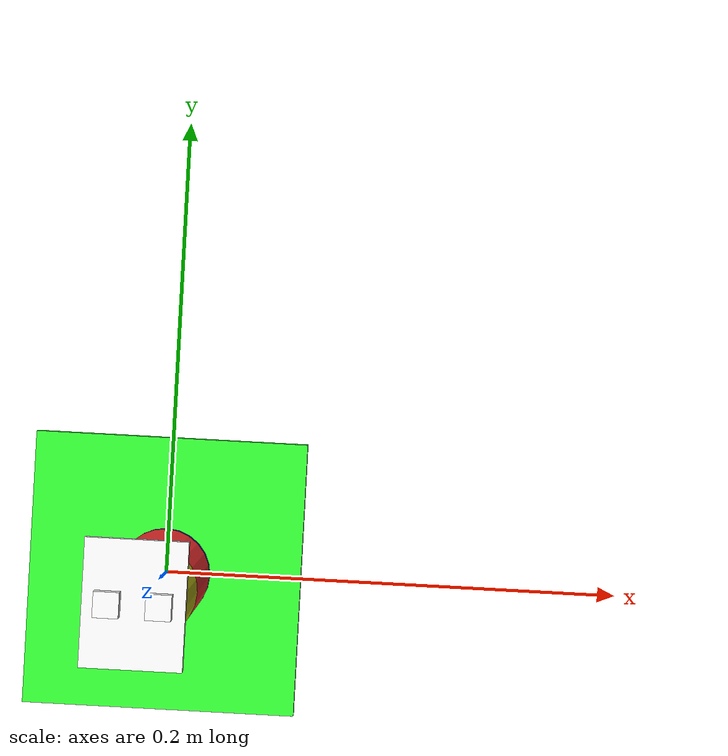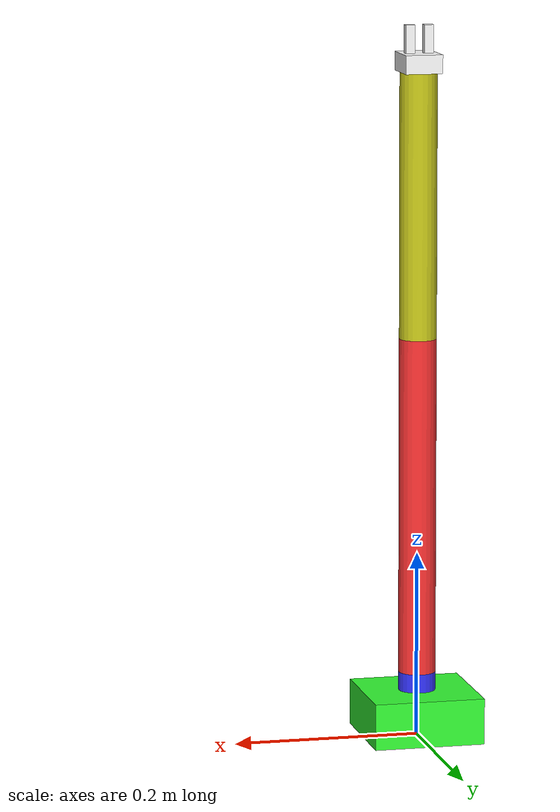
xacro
<?xml version="1.0"?>
<robot xmlns:xacro="http://www.ros.org/wiki/xacro" name="RobotArm">

	<xacro:include filename="Parameters.xacro"/>
	<xacro:include filename="Materials.xacro" />
	<xacro:include filename="Macros.xacro" />

	<link name="world"></link>

	<joint name="world-base_joint" type="fixed">
		<origin xyz="0 0 0" rpy="0 0 0"/>
		<parent link="world"/>
		<child link="base_link"/>
	</joint>

	<link name="base_link">

		<visual>
			<origin xyz="0 0 ${base_height/2}" rpy="0 0 0"/>
			<geometry>
				<box size="${base_length} ${base_width} ${base_height}"/>
			</geometry>
			<material name="green"/>
		</visual>

		<collision>
			<origin xyz="0 0 ${base_height/2}" rpy="0 0 0"/>
			<geometry>
				<box size="${base_length} ${base_width} ${base_height}"/>
			</geometry>
		</collision>
		<xacro:inertial_box mass="1.5" x="${base_length}" y="${base_width}" z="${base_height}">
			<origin xyz="0 0 ${base_height/2}" rpy="0 0 0"/>
		</xacro:inertial_box>
	</link>

	<joint name="base-rotator_joint" type="revolute">

		<origin xyz="0 0 ${base_height}" rpy="0 0 -${pi/2}"/>
		<parent link="base_link"/>
		<child link="rotator_link"/>
		<axis xyz="0 0 1"/>
		<limit lower="0" upper="${pi}" velocity="100" effort="100"/>
		<dynamics friction="0.98" damping="0"/>
	</joint>

	<link name="rotator_link">

		<visual>
			<origin xyz="0 0 ${rotator_length/2}"/>
			<geometry>
				<cylinder length="${rotator_length}" radius="${rotator_radius}"/>
			</geometry>
			<material name="blue"/>
		</visual>

		<collision>
			<origin xyz="0 0 ${rotator_length/2}"/>
			<geometry>
				<cylinder length="${rotator_length}" radius="${rotator_radius}"/>
			</geometry>
		</collision>

		<xacro:inertial_cylinder mass="0.15" length="${rotator_length}" radius="${rotator_radius}">
			<origin xyz="0 0 ${rotator_length/2}"/>
		</xacro:inertial_cylinder>

	</link>

	<joint name="rotator-arm1_joint" type="revolute">
		<origin xyz="0 0 ${rotator_length}" rpy="0 0 0"/>
		<parent link="rotator_link"/>
		<child link="arm1_link"/>
		<axis xyz="0 1 0"/>
		<limit lower="0" upper="${pi/2}" velocity="100" effort="100"/>
		<dynamics friction="0" damping="80"/>
	</joint>

	<link name="arm1_link">

		<visual>
			<origin xyz="0 0 ${arm1_length/2}" rpy="0 0 0"/>
			<geometry>
				<cylinder length="${arm1_length}" radius="${arm1_radius}"/>
			</geometry>
			<material name="red"/>
		</visual>

		<collision>
			<origin xyz="0 0 ${arm1_length/2}" rpy="0 0 0"/>
			<geometry>
				<cylinder length="${arm1_length}" radius="${arm1_radius}"/>
			</geometry>
		</collision>

		<xacro:inertial_cylinder mass="0.1" length="${arm1_length}" radius="${arm1_radius}">
			<origin xyz="0 0 ${arm1_length/2}" rpy="0 0 0"/>
		</xacro:inertial_cylinder>
	</link>

	<joint name="arm1-arm2_joint" type="revolute">
		<origin xyz="0 0 ${arm1_length}" rpy="0 0 0"/>
		<parent link="arm1_link"/>
		<child link="arm2_link"/>
		<axis xyz="0 1 0"/>
		<limit lower="0" upper="${pi}" velocity="100" effort="100"/>
		<dynamics friction="0.98" damping="0"/>
	</joint>

	<link name="arm2_link">

		<visual>
			<origin xyz="0 0 ${arm2_length/2}" rpy="0 0 0"/>
			<geometry>
				<cylinder length="${arm2_length}" radius="${arm2_radius}"/>
			</geometry>
			<material name="yellow"/>
		</visual>

		<collision>
			<origin xyz="0 0 ${arm2_length/2}" rpy="0 0 0"/>
			<geometry>
				<cylinder length="${arm2_length}" radius="${arm2_radius}"/>
			</geometry>
		</collision>

		<xacro:inertial_cylinder mass="0.1" length="${arm2_length}" radius="${arm2_radius}">
			<origin xyz="0 0 ${arm2_length/2}" rpy="0 0 0"/>
		</xacro:inertial_cylinder>
	</link>

	<joint name="arm2-gripperBase_joint" type="revolute">
		<origin xyz="0 0 ${arm2_length}" rpy="0 ${pi/2} 0"/>
		<parent link="arm2_link"/>
		<child link="gripperBase_link"/>
		<axis xyz="0 1 0"/>
		<limit lower="0" upper="${pi/2}" velocity="100" effort="100"/>
		<dynamics friction="0.98" damping="0"/>
	</joint>

	<link name="gripperBase_link">

		<visual>
			<origin xyz="-${gripperBase_length/2} 0 0" rpy="0 0 0"/>
			<geometry>
				<box size="${gripperBase_length} ${gripperBase_width} ${gripperBase_height}"/>
			</geometry>
			<material name="white"/>
		</visual>
		<collision>
			<origin xyz="0 0 0" rpy="0 0 0"/>
			<geometry>
				<box size="${gripperBase_length} ${gripperBase_width} ${gripperBase_height}"/>
			</geometry>
		</collision>

		<xacro:inertial_box mass="0.08" x="${gripperBase_length}" y="${gripperBase_width}" z="${gripperBase_height}">
			<origin xyz="0 0 0" rpy="0 0 0"/>
		</xacro:inertial_box>
	</link>

	<joint name="gripperBase-gripperClawLeft_joint" type="revolute">

		<origin xyz="-${gripperClaw_height} ${gripperBase_width/4} 0" rpy="0 ${pi/2} 0"/>
		<parent link="gripperBase_link"/>
		<child link="gripperClawLeft_link"/>
		<axis xyz="-1 0 0"/>
		<limit lower="-${pi/6}" upper="${pi/6}" velocity="100" effort="100"/>
		<dynamics friction="0.98" damping="0"/>
	</joint>

	<link name="gripperClawLeft_link">

		<visual>
			<origin xyz="0 0 ${gripperClaw_height/2}" rpy="0 0 0"/>
			<geometry>
				<box size="${gripperClaw_length} ${gripperClaw_width} ${gripperClaw_height}"/>
			</geometry>
			<material name="white"/>
		</visual>

		<collision>
			<origin xyz="0 0 -${gripperClaw_height/2}" rpy="0 0 0"/>
			<geometry>
				<box size="${gripperClaw_length} ${gripperClaw_width} ${gripperClaw_height}"/>
			</geometry>
		</collision>

		<xacro:inertial_box mass="0.005" x="${gripperClaw_length}" y="${gripperClaw_width}" z="${gripperClaw_height}">
			<origin xyz="0 0 ${gripperClaw_length/2}" rpy="0 0 0"/>
		</xacro:inertial_box>
	</link>

	<joint name="gripperBase-gripperClawRight_joint" type="revolute">

		<origin xyz="-${gripperClaw_height} -${gripperBase_width/4} 0" rpy="0 ${pi/2} 0"/>
		<parent link="gripperBase_link"/>
		<child link="gripperClawRight_link"/>
		<axis xyz="1 0 0"/>
		<limit lower="-${pi/6}" upper="${pi/6}" velocity="100" effort="100"/>
		<dynamics friction="0.98" damping="0"/>
	</joint>

	<link name="gripperClawRight_link">

		<visual>
			<origin xyz="0 0 ${gripperClaw_height/2}" rpy="0 0 0"/>
			<geometry>
				<box size="${gripperClaw_length} ${gripperClaw_width} ${gripperClaw_height}"/>
			</geometry>
			<material name="white"/>
		</visual>

		<collision>
			<origin xyz="0 0 -${gripperClaw_height/2}" rpy="0 0 0"/>
			<geometry>
				<box size="${gripperClaw_length} ${gripperClaw_width} ${gripperClaw_height}"/>
			</geometry>
		</collision>

		<xacro:inertial_box mass="0.005" x="${gripperClaw_length}" y="${gripperClaw_width}" z="${gripperClaw_height}">
			<origin xyz="0 0 ${gripperClaw_length/2}" rpy="0 0 0"/>
		</xacro:inertial_box>
	</link>

	<xacro:include filename="Gazebo_Plugins.xacro"/>
</robot>

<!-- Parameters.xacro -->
<robot xmlns:xacro="http://www.ros.org/wiki/xacro">

	<xacro:property name="base_length" value="0.12"/>
	<xacro:property name="base_width" value="0.12"/>
	<xacro:property name="base_height" value="0.05"/>

	<xacro:property name="rotator_length" value="0.02"/>
	<xacro:property name="rotator_radius" value="0.02"/>

	<xacro:property name="arm1_length" value="0.364"/>
	<xacro:property name="arm1_radius" value="0.02"/>

	<xacro:property name="arm2_length" value="0.285"/>
	<xacro:property name="arm2_radius" value="0.02"/>

	<xacro:property name="gripperBase_length" value="0.02"/>
	<xacro:property name="gripperBase_width" value="0.04"/>
	<xacro:property name="gripperBase_height" value="0.05"/>

	<xacro:property name="gripperClaw_length" value="0.01"/>
	<xacro:property name="gripperClaw_width" value="0.01"/>
	<xacro:property name="gripperClaw_height" value="0.05"/>

</robot>

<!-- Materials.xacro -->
<robot xmlns:xacro="http://www.ros.org/wiki/xacro">

	<material name="green">
		<color rgba="0.2 1 0.2 1"/>
	</material>

	<material name="blue">
		<color rgba="0.2 0.2 1 1"/>
	</material>

	<material name="red">
		<color rgba="1 0.2 0.2 1"/>
	</material>

	<material name="yellow">
		<color rgba="0.8 0.8 0.1 1"/>
	</material>

	<material name="white">
		<color rgba="1 1 1 1"/>
	</material>

	<gazebo reference="base_link">
		<material>Gazebo/Green</material>
	</gazebo>

	<gazebo reference="rotator_link">
		<material>Gazebo/Blue</material>
	</gazebo>

	<gazebo reference="arm1_link">
		<material>Gazebo/Red</material>
	</gazebo>

	<gazebo reference="arm2_link">
		<material>Gazebo/Yellow</material>
	</gazebo>

	<gazebo reference="gripperBase_link">
		<material>Gazebo/White</material>
	</gazebo>

</robot>

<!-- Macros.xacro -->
<robot xmlns:xacro="http://www.ros.org/wiki/xacro">

	<xacro:macro name="inertial_box" params="mass x y z *origin">
		<inertial>
			<xacro:insert_block name="origin"/>
			<mass value="${mass}"/>
			<inertia ixx="${1/12 * mass * (y*y + z*z)}"
				 ixy="0"
				 ixz="0"
				 iyy="${1/12 * mass * (x*x + z*z)}"
				 iyz="0"
				 izz="${1/12 * mass * (x*x + y*y)}" />
		</inertial>
	</xacro:macro>

	<xacro:macro name="inertial_cylinder" params="mass length radius *origin">
		<inertial>
			<xacro:insert_block name="origin"/>
			<mass value="${mass}"/>
			<inertia ixx="${1/12 * mass * (3*radius*radius + length*length)}"
				 ixy="0"
				 ixz="0"
				 iyy="${1/12 * mass * (3*radius*radius + length*length)}"
				 iyz="0"
				 izz="${1/2 * mass * (radius*radius)}" />
		</inertial>
	</xacro:macro>
</robot>
